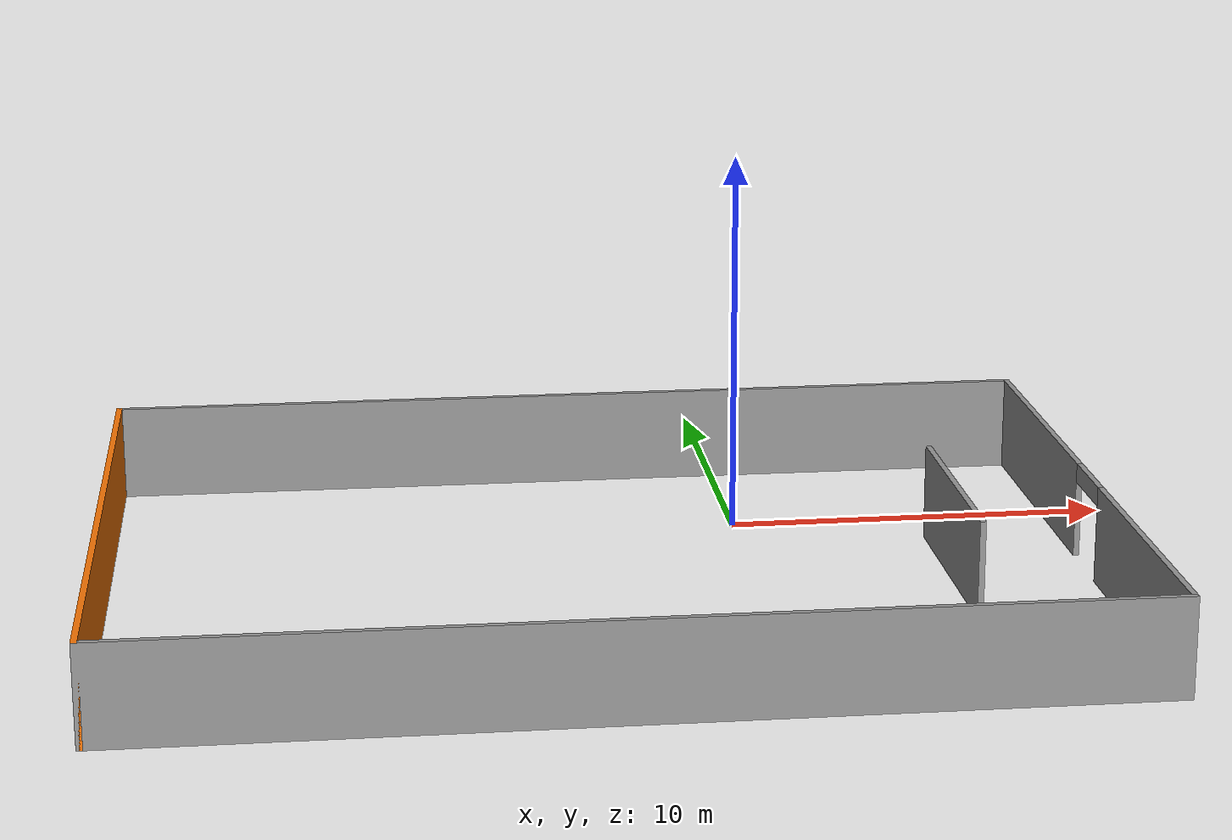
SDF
<?xml version='1.0'?>
<sdf version='1.6'>
  <model name='restaurant'>
    <pose frame=''>-3.936 -4.4909 0 0 -0 0</pose>
    <link name='Wall_10'>
      <collision name='Wall_10_Collision'>
        <geometry>
          <box>
            <size>18 0.15 2.5</size>
          </box>
        </geometry>
        <pose frame=''>0 0 1.25 0 -0 0</pose>
      </collision>
      <visual name='Wall_10_Visual'>
        <pose frame=''>0 0 1.25 0 -0 0</pose>
        <geometry>
          <box>
            <size>18 0.15 2.5</size>
          </box>
        </geometry>
        <material>
          <script>
            <uri>file://media/materials/scripts/gazebo.material</uri>
            <name>Gazebo/Grey</name>
          </script>
          <ambient>0.996078 0.47451 0.0196078 1</ambient>
        </material>
        <meta>
          <layer>0</layer>
        </meta>
      </visual>
      <pose frame=''>-12.425 -0.0001 0 0 0 -1.5708</pose>
    </link>
    <link name='Wall_12'>
      <collision name='Wall_12_Collision'>
        <geometry>
          <box>
            <size>25 0.15 2.5</size>
          </box>
        </geometry>
        <pose frame=''>0 0 1.25 0 -0 0</pose>
      </collision>
      <visual name='Wall_12_Visual'>
        <pose frame=''>0 0 1.25 0 -0 0</pose>
        <geometry>
          <box>
            <size>25 0.15 2.5</size>
          </box>
        </geometry>
        <material>
          <script>
            <uri>file://media/materials/scripts/gazebo.material</uri>
            <name>Gazebo/Grey</name>
          </script>
          <ambient>1 1 1 1</ambient>
        </material>
        <meta>
          <layer>0</layer>
        </meta>
      </visual>
      <pose frame=''>-1e-06 -8.9251 0 0 -0 0</pose>
    </link>
    <link name='Wall_14'>
      <pose frame=''>12.425 1e-05 0 0 -0 1.5708</pose>
      <visual name='Wall_14_Visual_0'>
        <pose frame=''>-5.00641 0 1.25 0 -0 0</pose>
        <geometry>
          <box>
            <size>7.98717 0.15 2.5</size>
          </box>
        </geometry>
        <material>
          <script>
            <uri>file://media/materials/scripts/gazebo.material</uri>
            <name>Gazebo/Grey</name>
          </script>
          <ambient>1 1 1 1</ambient>
        </material>
        <meta>
          <layer>0</layer>
        </meta>
      </visual>
      <collision name='Wall_14_Collision_0'>
        <geometry>
          <box>
            <size>7.98717 0.15 2.5</size>
          </box>
        </geometry>
        <pose frame=''>-5.00641 0 1.25 0 -0 0</pose>
      </collision>
      <visual name='Wall_14_Visual_1'>
        <pose frame=''>4.99359 0 1.25 0 -0 0</pose>
        <geometry>
          <box>
            <size>8.01282 0.15 2.5</size>
          </box>
        </geometry>
        <material>
          <script>
            <uri>file://media/materials/scripts/gazebo.material</uri>
            <name>Gazebo/Grey</name>
          </script>
          <ambient>1 1 1 1</ambient>
        </material>
        <meta>
          <layer>0</layer>
        </meta>
      </visual>
      <collision name='Wall_14_Collision_1'>
        <geometry>
          <box>
            <size>8.01282 0.15 2.5</size>
          </box>
        </geometry>
        <pose frame=''>4.99359 0 1.25 0 -0 0</pose>
      </collision>
      <visual name='Wall_14_Visual_2'>
        <pose frame=''>-0.012825 0 2.25 0 -0 0</pose>
        <geometry>
          <box>
            <size>2 0.15 0.5</size>
          </box>
        </geometry>
        <material>
          <script>
            <uri>file://media/materials/scripts/gazebo.material</uri>
            <name>Gazebo/Grey</name>
          </script>
          <ambient>1 1 1 1</ambient>
        </material>
        <meta>
          <layer>0</layer>
        </meta>
      </visual>
      <collision name='Wall_14_Collision_2'>
        <geometry>
          <box>
            <size>2 0.15 0.5</size>
          </box>
        </geometry>
        <pose frame=''>-0.012825 0 2.25 0 -0 0</pose>
      </collision>
    </link>
    <link name='Wall_16'>
      <collision name='Wall_16_Collision'>
        <geometry>
          <box>
            <size>6.25 0.15 2.5</size>
          </box>
        </geometry>
        <pose frame=''>0 0 1.25 0 -0 0</pose>
      </collision>
      <visual name='Wall_16_Visual'>
        <pose frame=''>0 0 1.25 0 -0 0</pose>
        <geometry>
          <box>
            <size>6.25 0.15 2.5</size>
          </box>
        </geometry>
        <material>
          <script>
            <uri>file://media/materials/scripts/gazebo.material</uri>
            <name>Gazebo/Grey</name>
          </script>
          <ambient>1 1 1 1</ambient>
        </material>
        <meta>
          <layer>0</layer>
        </meta>
      </visual>
      <pose frame=''>8.88051 -0.186574 0 0 0 -1.5708</pose>
    </link>
    <link name='Wall_8'>
      <collision name='Wall_8_Collision'>
        <geometry>
          <box>
            <size>25 0.15 2.5</size>
          </box>
        </geometry>
        <pose frame=''>0 0 1.25 0 -0 0</pose>
      </collision>
      <visual name='Wall_8_Visual'>
        <pose frame=''>0 0 1.25 0 -0 0</pose>
        <geometry>
          <box>
            <size>25 0.15 2.5</size>
          </box>
        </geometry>
        <material>
          <script>
            <uri>file://media/materials/scripts/gazebo.material</uri>
            <name>Gazebo/Grey</name>
          </script>
          <ambient>1 1 1 1</ambient>
        </material>
        <meta>
          <layer>0</layer>
        </meta>
      </visual>
      <pose frame=''>1e-06 8.925 0 0 0 -3.14159</pose>
    </link>
    <static>1</static>
  </model>
</sdf>
